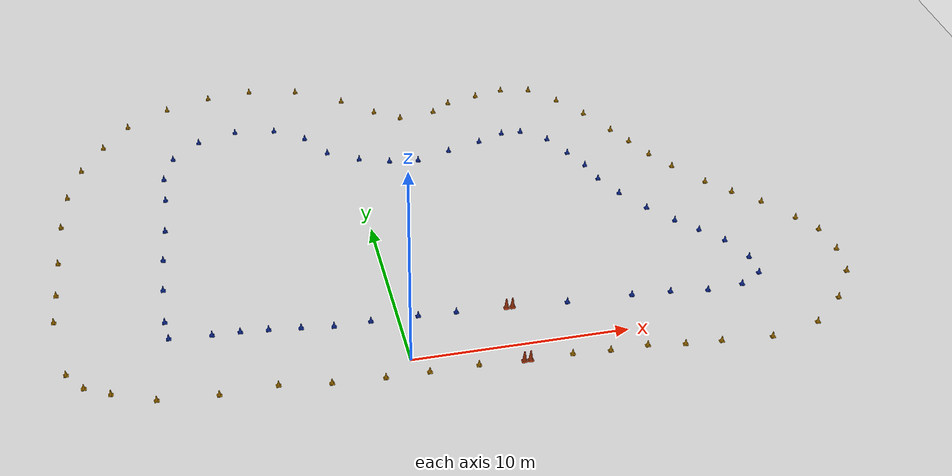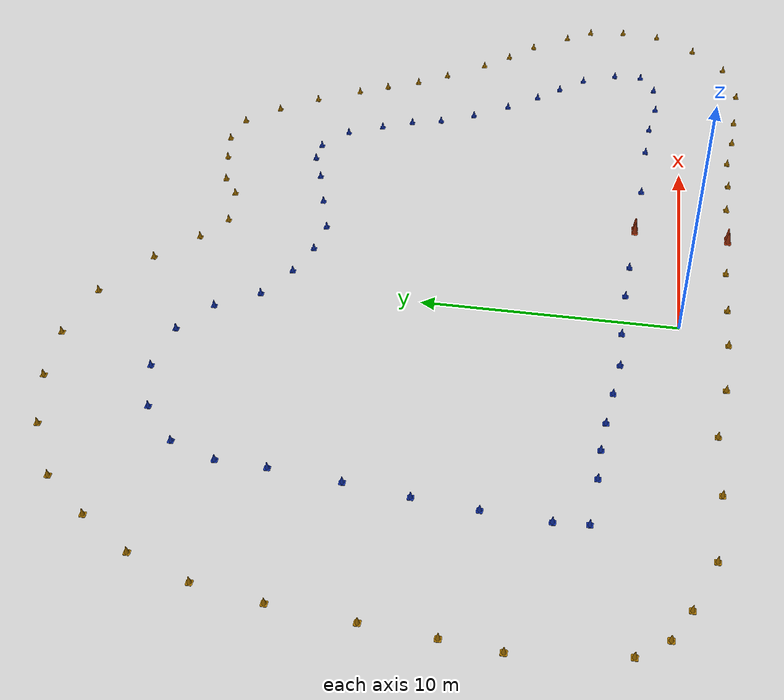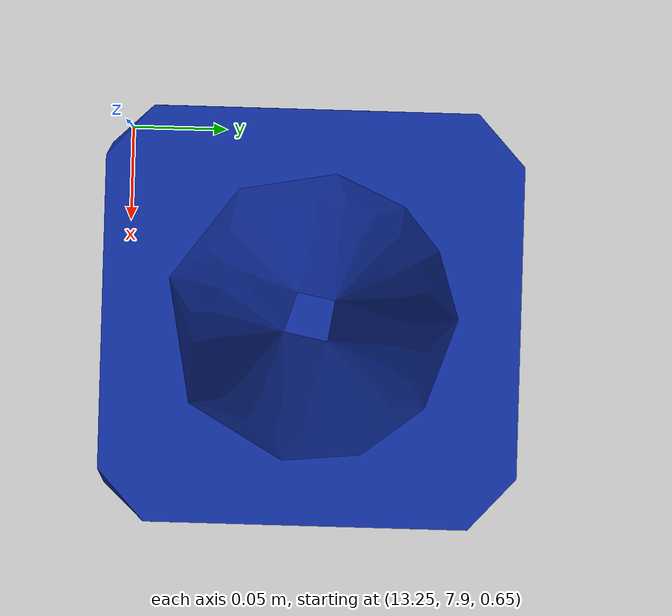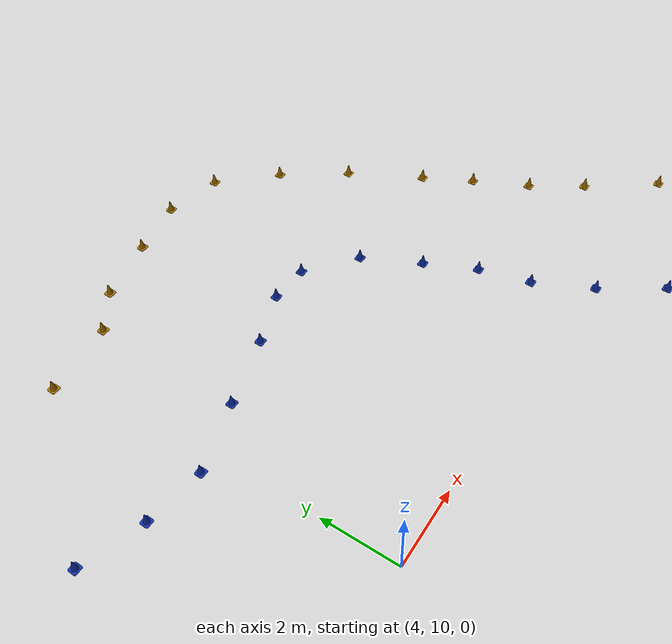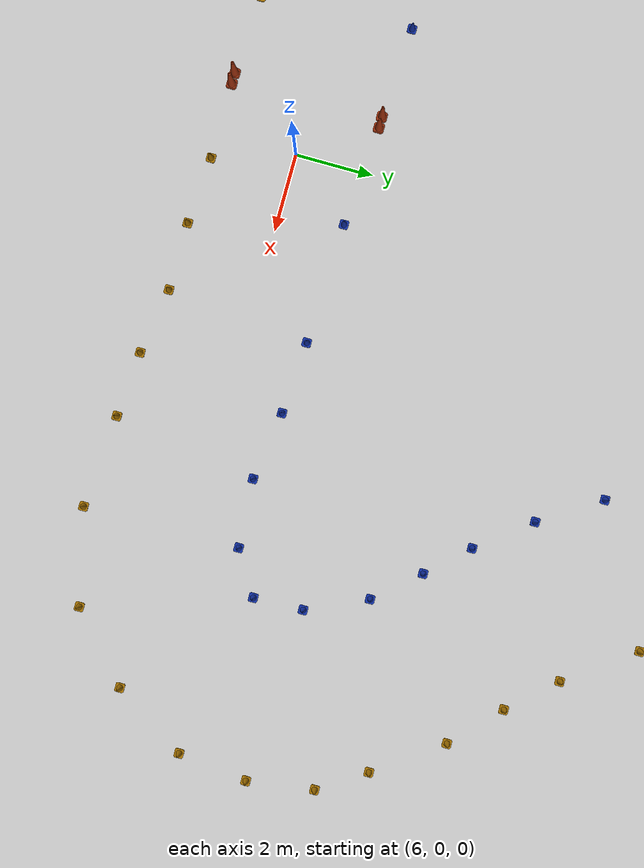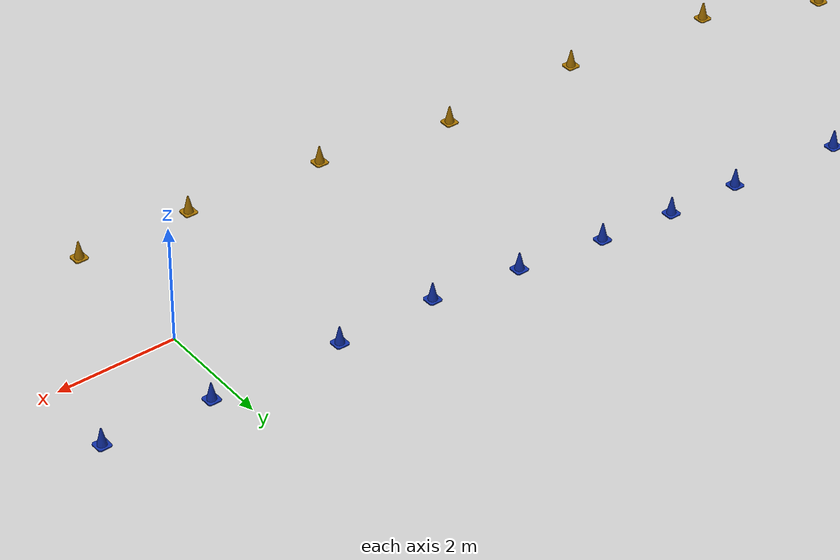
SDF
<sdf version='1.6'>
  <world name='boa_constrictor'>
    <gui fullscreen='0'>
      <camera name='user_camera'>
        <pose frame=''>-40 40 20 0 0.667643 -1</pose>
        <view_controller>orbit</view_controller>
        <projection_type>perspective</projection_type>
      </camera>
    </gui>

    <!-- WORLD SETTINGS -->
    <scene>
      <ambient>1.0 1.0 1.0 1.0</ambient>
      <shadows>false</shadows>
    </scene>

    <spherical_coordinates>
      <heading_deg>180</heading_deg>

      <!-- Appleton Tower coordinates -->
      <latitude_deg>-27.69056</latitude_deg>
      <longitude_deg>152.65461</longitude_deg>
    </spherical_coordinates>

    <light name='sun' type='directional'>
      <cast_shadows>1</cast_shadows>
      <pose frame=''>0 0 10 0 -0 0</pose>
      <diffuse>0.8 0.8 0.8 1</diffuse>
      <specular>0.1 0.1 0.1 1</specular>
      <attenuation>
        <range>1000</range>
        <constant>0.9</constant>
        <linear>0.01</linear>
        <quadratic>0.001</quadratic>
      </attenuation>
      <direction>-0.5 0.5 -1</direction>
    </light>

    <!-- MODELS -->
    <include>
      <uri>model://ground_plane</uri>
      <pose>0.0 0.0 0.0 0 0 0</pose>
    </include>

    <include>
      <uri>model://boa_constrictor</uri>
      <pose>0 0 0.5 0 0 0</pose>
    </include>

  </world>
</sdf>

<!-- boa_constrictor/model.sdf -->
<sdf version='1.6'>
  <model name='track'>

    <include>
      <pose>7.580770159723322 1.6721591436489165 0.15 0 0 0</pose>
      <uri>model://blue_cone</uri>
      <name>blue_cone_0</name>

      <covariance x="0.00019832" y="0.00019832" xy="0.0"/>

    </include>

    <include>
      <pose>10.600905184688116 1.552044188092509 0.15 0 0 0</pose>
      <uri>model://blue_cone</uri>
      <name>blue_cone_1</name>

      <covariance x="0.000196" y="0.000196" xy="0.0"/>

    </include>

    <include>
      <pose>12.406227504828944 1.4246719240060557 0.15 0 0 0</pose>
      <uri>model://blue_cone</uri>
      <name>blue_cone_2</name>

      <covariance x="0.000196" y="0.000196" xy="0.0"/>

    </include>

    <include>
      <pose>14.12181422599625 1.1678036734773327 0.15 0 0 0</pose>
      <uri>model://blue_cone</uri>
      <name>blue_cone_3</name>

      <covariance x="0.000196" y="0.000196" xy="0.0"/>

    </include>

    <include>
      <pose>15.811562903721692 1.272153738652002 0.15 0 0 0</pose>
      <uri>model://blue_cone</uri>
      <name>blue_cone_4</name>

      <covariance x="0.000196" y="0.000196" xy="0.0"/>

    </include>

    <include>
      <pose>16.872870803102003 1.925526649813425 0.15 0 0 0</pose>
      <uri>model://blue_cone</uri>
      <name>blue_cone_5</name>

      <covariance x="0.000196" y="0.000196" xy="0.0"/>

    </include>

    <include>
      <pose>16.84410174437881 3.1562898306224607 0.15 0 0 0</pose>
      <uri>model://blue_cone</uri>
      <name>blue_cone_6</name>

      <covariance x="0.000196" y="0.000196" xy="0.0"/>

    </include>

    <include>
      <pose>16.1753147048438 4.643067502019743 0.15 0 0 0</pose>
      <uri>model://blue_cone</uri>
      <name>blue_cone_7</name>

      <covariance x="0.000196" y="0.000196" xy="0.0"/>

    </include>

    <include>
      <pose>15.253521570782151 5.713880836070051 0.15 0 0 0</pose>
      <uri>model://blue_cone</uri>
      <name>blue_cone_8</name>

      <covariance x="0.000196" y="0.000196" xy="0.0"/>

    </include>

    <include>
      <pose>14.360082061058376 6.6953154904193655 0.15 0 0 0</pose>
      <uri>model://blue_cone</uri>
      <name>blue_cone_9</name>

      <covariance x="0.000196" y="0.000196" xy="0.0"/>

    </include>

    <include>
      <pose>13.350259800030283 7.99862709203576 0.15 0 0 0</pose>
      <uri>model://blue_cone</uri>
      <name>blue_cone_10</name>

      <covariance x="0.000196" y="0.000196" xy="0.0"/>

    </include>

    <include>
      <pose>12.400274867087386 9.487857471328557 0.15 0 0 0</pose>
      <uri>model://blue_cone</uri>
      <name>blue_cone_11</name>

      <covariance x="0.000196" y="0.000196" xy="0.0"/>

    </include>

    <include>
      <pose>11.734004153522308 10.931068331875077 0.15 0 0 0</pose>
      <uri>model://blue_cone</uri>
      <name>blue_cone_12</name>

      <covariance x="0.000196" y="0.000196" xy="0.0"/>

    </include>

    <include>
      <pose>11.418320042414749 12.22160222912822 0.15 0 0 0</pose>
      <uri>model://blue_cone</uri>
      <name>blue_cone_13</name>

      <covariance x="0.000196" y="0.000196" xy="0.0"/>

    </include>

    <include>
      <pose>10.849123909628489 13.503965806118956 0.15 0 0 0</pose>
      <uri>model://blue_cone</uri>
      <name>blue_cone_14</name>

      <covariance x="0.000196" y="0.000196" xy="0.0"/>

    </include>

    <include>
      <pose>10.164900173643302 14.943966189726934 0.15 0 0 0</pose>
      <uri>model://blue_cone</uri>
      <name>blue_cone_15</name>

      <covariance x="0.000196" y="0.000196" xy="0.0"/>

    </include>

    <include>
      <pose>8.980711371638566 15.924300390604351 0.15 0 0 0</pose>
      <uri>model://blue_cone</uri>
      <name>blue_cone_16</name>

      <covariance x="0.000196" y="0.000196" xy="0.0"/>

    </include>

    <include>
      <pose>7.979747108270373 15.965800191417792 0.15 0 0 0</pose>
      <uri>model://blue_cone</uri>
      <name>blue_cone_17</name>

      <covariance x="0.000196" y="0.000196" xy="0.0"/>

    </include>

    <include>
      <pose>6.672560416880449 15.467069613905172 0.15 0 0 0</pose>
      <uri>model://blue_cone</uri>
      <name>blue_cone_18</name>

      <covariance x="0.000196" y="0.000196" xy="0.0"/>

    </include>

    <include>
      <pose>4.950269621172732 14.955210057239832 0.15 0 0 0</pose>
      <uri>model://blue_cone</uri>
      <name>blue_cone_19</name>

      <covariance x="0.0001997083333333" y="0.0001997083333333" xy="0.0"/>

    </include>

    <include>
      <pose>3.2524555660788224 14.437422477388122 0.15 0 0 0</pose>
      <uri>model://blue_cone</uri>
      <name>blue_cone_20</name>

      <covariance x="0.000196" y="0.000196" xy="0.0"/>

    </include>

    <include>
      <pose>1.810768848230376 14.642260578886797 0.15 0 0 0</pose>
      <uri>model://blue_cone</uri>
      <name>blue_cone_21</name>

      <covariance x="0.000196" y="0.000196" xy="0.0"/>

    </include>

    <include>
      <pose>0.3354982167720459 15.150824604200174 0.15 0 0 0</pose>
      <uri>model://blue_cone</uri>
      <name>blue_cone_22</name>

      <covariance x="0.000196" y="0.000196" xy="0.0"/>

    </include>

    <include>
      <pose>-1.1647364491853829 16.05360449631908 0.15 0 0 0</pose>
      <uri>model://blue_cone</uri>
      <name>blue_cone_23</name>

      <covariance x="0.000196" y="0.000196" xy="0.0"/>

    </include>

    <include>
      <pose>-2.1017899809058846 17.630250925485406 0.15 0 0 0</pose>
      <uri>model://blue_cone</uri>
      <name>blue_cone_24</name>

      <covariance x="0.000196" y="0.000196" xy="0.0"/>

    </include>

    <include>
      <pose>-3.5559685936436294 18.67715139022377 0.15 0 0 0</pose>
      <uri>model://blue_cone</uri>
      <name>blue_cone_25</name>

      <covariance x="0.000196" y="0.000196" xy="0.0"/>

    </include>

    <include>
      <pose>-5.564924128589277 18.96597018587267 0.15 0 0 0</pose>
      <uri>model://blue_cone</uri>
      <name>blue_cone_26</name>

      <covariance x="0.000196" y="0.000196" xy="0.0"/>

    </include>

    <include>
      <pose>-7.506309783857348 18.404528445863107 0.15 0 0 0</pose>
      <uri>model://blue_cone</uri>
      <name>blue_cone_27</name>

      <covariance x="0.000196" y="0.000196" xy="0.0"/>

    </include>

    <include>
      <pose>-8.928494833243114 17.120259154454885 0.15 0 0 0</pose>
      <uri>model://blue_cone</uri>
      <name>blue_cone_28</name>

      <covariance x="0.000196" y="0.000196" xy="0.0"/>

    </include>

    <include>
      <pose>-9.528195809206576 15.407833808620865 0.15 0 0 0</pose>
      <uri>model://blue_cone</uri>
      <name>blue_cone_29</name>

      <covariance x="0.000196" y="0.000196" xy="0.0"/>

    </include>

    <include>
      <pose>-9.603797030691862 13.580601428679596 0.15 0 0 0</pose>
      <uri>model://blue_cone</uri>
      <name>blue_cone_30</name>

      <covariance x="0.000196" y="0.000196" xy="0.0"/>

    </include>

    <include>
      <pose>-9.833092119605103 11.000227997877854 0.15 0 0 0</pose>
      <uri>model://blue_cone</uri>
      <name>blue_cone_31</name>

      <covariance x="0.000196" y="0.000196" xy="0.0"/>

    </include>

    <include>
      <pose>-10.113960453709206 8.677890357225415 0.15 0 0 0</pose>
      <uri>model://blue_cone</uri>
      <name>blue_cone_32</name>

      <covariance x="0.000196" y="0.000196" xy="0.0"/>

    </include>

    <include>
      <pose>-10.300299641302953 6.4043732531112765 0.15 0 0 0</pose>
      <uri>model://blue_cone</uri>
      <name>blue_cone_33</name>

      <covariance x="0.000196" y="0.000196" xy="0.0"/>

    </include>

    <include>
      <pose>-10.426781141389675 4.057466228860182 0.15 0 0 0</pose>
      <uri>model://blue_cone</uri>
      <name>blue_cone_34</name>

      <covariance x="0.000196" y="0.000196" xy="0.0"/>

    </include>

    <include>
      <pose>-10.3490473565182 2.877284444995476 0.15 0 0 0</pose>
      <uri>model://blue_cone</uri>
      <name>blue_cone_35</name>

      <covariance x="0.000196" y="0.000196" xy="0.0"/>

    </include>

    <include>
      <pose>-8.445408241015182 2.7214863215755085 0.15 0 0 0</pose>
      <uri>model://blue_cone</uri>
      <name>blue_cone_36</name>

      <covariance x="0.000196" y="0.000196" xy="0.0"/>

    </include>

    <include>
      <pose>-7.195248648650308 2.682269976438299 0.15 0 0 0</pose>
      <uri>model://blue_cone</uri>
      <name>blue_cone_37</name>

      <covariance x="0.000196" y="0.000196" xy="0.0"/>

    </include>

    <include>
      <pose>-5.945027489724362 2.565359125611607 0.15 0 0 0</pose>
      <uri>model://blue_cone</uri>
      <name>blue_cone_38</name>

      <covariance x="0.000196" y="0.000196" xy="0.0"/>

    </include>

    <include>
      <pose>-4.509214818965177 2.380480231919104 0.15 0 0 0</pose>
      <uri>model://blue_cone</uri>
      <name>blue_cone_39</name>

      <covariance x="0.000196" y="0.000196" xy="0.0"/>

    </include>

    <include>
      <pose>-3.0570419056183367 2.187397022123592 0.15 0 0 0</pose>
      <uri>model://blue_cone</uri>
      <name>blue_cone_40</name>

      <covariance x="0.000196" y="0.000196" xy="0.0"/>

    </include>

    <include>
      <pose>-1.3924839109476093 2.190402523796651 0.15 0 0 0</pose>
      <uri>model://blue_cone</uri>
      <name>blue_cone_41</name>

      <covariance x="0.000196" y="0.000196" xy="0.0"/>

    </include>

    <include>
      <pose>0.7552580961993363 2.123033050353788 0.15 0 0 0</pose>
      <uri>model://blue_cone</uri>
      <name>blue_cone_42</name>

      <covariance x="0.000196" y="0.000196" xy="0.0"/>

    </include>

    <include>
      <pose>2.487898066383735 2.0241715780093785 0.15 0 0 0</pose>
      <uri>model://blue_cone</uri>
      <name>blue_cone_43</name>

      <covariance x="0.0002027692307692" y="0.0002027692307692" xy="0.0"/>

    </include>

    <include>
      <pose>6.843598889005221 -1.8824939803173533 0.15 0 0 0</pose>
      <uri>model://yellow_cone</uri>
      <name>yellow_cone_44</name>

      <covariance x="0.0002027692307692" y="0.0002027692307692" xy="0.0"/>

    </include>

    <include>
      <pose>8.533943487953845 -2.005628793587926 0.15 0 0 0</pose>
      <uri>model://yellow_cone</uri>
      <name>yellow_cone_45</name>

      <covariance x="0.0002027692307692" y="0.0002027692307692" xy="0.0"/>

    </include>

    <include>
      <pose>10.22791356468838 -2.0116493916499314 0.15 0 0 0</pose>
      <uri>model://yellow_cone</uri>
      <name>yellow_cone_46</name>

      <covariance x="0.0002027692307692" y="0.0002027692307692" xy="0.0"/>

    </include>

    <include>
      <pose>11.882180882767669 -2.2772619961221503 0.15 0 0 0</pose>
      <uri>model://yellow_cone</uri>
      <name>yellow_cone_47</name>

      <covariance x="0.0002027692307692" y="0.0002027692307692" xy="0.0"/>

    </include>

    <include>
      <pose>13.51524801399529 -2.4089238458239954 0.15 0 0 0</pose>
      <uri>model://yellow_cone</uri>
      <name>yellow_cone_48</name>

      <covariance x="0.0002027692307692" y="0.0002027692307692" xy="0.0"/>

    </include>

    <include>
      <pose>15.824591828972618 -2.598366724383875 0.15 0 0 0</pose>
      <uri>model://yellow_cone</uri>
      <name>yellow_cone_49</name>

      <covariance x="0.0002027692307692" y="0.0002027692307692" xy="0.0"/>

    </include>

    <include>
      <pose>18.170340585141183 -2.049460298457226 0.15 0 0 0</pose>
      <uri>model://yellow_cone</uri>
      <name>yellow_cone_50</name>

      <covariance x="0.0002027692307692" y="0.0002027692307692" xy="0.0"/>

    </include>

    <include>
      <pose>19.77510984175472 -0.5938185181835465 0.15 0 0 0</pose>
      <uri>model://yellow_cone</uri>
      <name>yellow_cone_51</name>

      <covariance x="0.0002027692307692" y="0.0002027692307692" xy="0.0"/>

    </include>

    <include>
      <pose>20.908071514987803 1.1891582206267817 0.15 0 0 0</pose>
      <uri>model://yellow_cone</uri>
      <name>yellow_cone_52</name>

      <covariance x="0.0002027692307692" y="0.0002027692307692" xy="0.0"/>

    </include>

    <include>
      <pose>21.11731062908797 2.9001829742183176 0.15 0 0 0</pose>
      <uri>model://yellow_cone</uri>
      <name>yellow_cone_53</name>

      <covariance x="0.0002027692307692" y="0.0002027692307692" xy="0.0"/>

    </include>

    <include>
      <pose>20.895812241717078 4.538752391001086 0.15 0 0 0</pose>
      <uri>model://yellow_cone</uri>
      <name>yellow_cone_54</name>

      <covariance x="0.0002027692307692" y="0.0002027692307692" xy="0.0"/>

    </include>

    <include>
      <pose>20.15901965109665 5.683237094998034 0.15 0 0 0</pose>
      <uri>model://yellow_cone</uri>
      <name>yellow_cone_55</name>

      <covariance x="0.0002027692307692" y="0.0002027692307692" xy="0.0"/>

    </include>

    <include>
      <pose>19.01632975888174 7.304280822882692 0.15 0 0 0</pose>
      <uri>model://yellow_cone</uri>
      <name>yellow_cone_56</name>

      <covariance x="0.0002027692307692" y="0.0002027692307692" xy="0.0"/>

    </include>

    <include>
      <pose>17.88461204168759 8.411174170118855 0.15 0 0 0</pose>
      <uri>model://yellow_cone</uri>
      <name>yellow_cone_57</name>

      <covariance x="0.0002027692307692" y="0.0002027692307692" xy="0.0"/>

    </include>

    <include>
      <pose>16.885672770833168 9.535694751294631 0.15 0 0 0</pose>
      <uri>model://yellow_cone</uri>
      <name>yellow_cone_58</name>

      <covariance x="0.0002027692307692" y="0.0002027692307692" xy="0.0"/>

    </include>

    <include>
      <pose>15.695089397792623 11.204913754771114 0.15 0 0 0</pose>
      <uri>model://yellow_cone</uri>
      <name>yellow_cone_59</name>

      <covariance x="0.0002027692307692" y="0.0002027692307692" xy="0.0"/>

    </include>

    <include>
      <pose>14.898561506389992 12.49885297299616 0.15 0 0 0</pose>
      <uri>model://yellow_cone</uri>
      <name>yellow_cone_60</name>

      <covariance x="0.0002027692307692" y="0.0002027692307692" xy="0.0"/>

    </include>

    <include>
      <pose>14.252657014273804 13.88213053732625 0.15 0 0 0</pose>
      <uri>model://yellow_cone</uri>
      <name>yellow_cone_61</name>

      <covariance x="0.0002027692307692" y="0.0002027692307692" xy="0.0"/>

    </include>

    <include>
      <pose>13.632126148079042 15.118679152956146 0.15 0 0 0</pose>
      <uri>model://yellow_cone</uri>
      <name>yellow_cone_62</name>

      <covariance x="0.0002027692307692" y="0.0002027692307692" xy="0.0"/>

    </include>

    <include>
      <pose>12.689784460471689 16.941899311717716 0.15 0 0 0</pose>
      <uri>model://yellow_cone</uri>
      <name>yellow_cone_63</name>

      <covariance x="0.0002027692307692" y="0.0002027692307692" xy="0.0"/>

    </include>

    <include>
      <pose>11.622214176234108 18.51509588507084 0.15 0 0 0</pose>
      <uri>model://yellow_cone</uri>
      <name>yellow_cone_64</name>

      <covariance x="0.0002027692307692" y="0.0002027692307692" xy="0.0"/>

    </include>

    <include>
      <pose>10.410094566193266 19.842930000431632 0.15 0 0 0</pose>
      <uri>model://yellow_cone</uri>
      <name>yellow_cone_65</name>

      <covariance x="0.0002027692307692" y="0.0002027692307692" xy="0.0"/>

    </include>

    <include>
      <pose>8.945934040908583 20.14804871043043 0.15 0 0 0</pose>
      <uri>model://yellow_cone</uri>
      <name>yellow_cone_66</name>

      <covariance x="0.0002027692307692" y="0.0002027692307692" xy="0.0"/>

    </include>

    <include>
      <pose>7.486028873701576 19.85503408899872 0.15 0 0 0</pose>
      <uri>model://yellow_cone</uri>
      <name>yellow_cone_67</name>

      <covariance x="0.0002027692307692" y="0.0002027692307692" xy="0.0"/>

    </include>

    <include>
      <pose>5.893838640547032 19.4729907680684 0.15 0 0 0</pose>
      <uri>model://yellow_cone</uri>
      <name>yellow_cone_68</name>

      <covariance x="0.0002027692307692" y="0.0002027692307692" xy="0.0"/>

    </include>

    <include>
      <pose>4.94453647279415 18.79914291540236 0.15 0 0 0</pose>
      <uri>model://yellow_cone</uri>
      <name>yellow_cone_69</name>

      <covariance x="0.0002027692307692" y="0.0002027692307692" xy="0.0"/>

    </include>

    <include>
      <pose>3.11858290007736 18.56255473791404 0.15 0 0 0</pose>
      <uri>model://yellow_cone</uri>
      <name>yellow_cone_70</name>

      <covariance x="0.0002027692307692" y="0.0002027692307692" xy="0.0"/>

    </include>

    <include>
      <pose>1.8715940456249849 19.40800767407754 0.15 0 0 0</pose>
      <uri>model://yellow_cone</uri>
      <name>yellow_cone_71</name>

      <covariance x="0.0002027692307692" y="0.0002027692307692" xy="0.0"/>

    </include>

    <include>
      <pose>0.3464643429092433 20.847964900015025 0.15 0 0 0</pose>
      <uri>model://yellow_cone</uri>
      <name>yellow_cone_72</name>

      <covariance x="0.0002027692307692" y="0.0002027692307692" xy="0.0"/>

    </include>

    <include>
      <pose>-1.9297155726266289 22.308455101306908 0.15 0 0 0</pose>
      <uri>model://yellow_cone</uri>
      <name>yellow_cone_73</name>

      <covariance x="0.0002027692307692" y="0.0002027692307692" xy="0.0"/>

    </include>

    <include>
      <pose>-4.365418611916313 22.82167195967721 0.15 0 0 0</pose>
      <uri>model://yellow_cone</uri>
      <name>yellow_cone_74</name>

      <covariance x="0.0002027692307692" y="0.0002027692307692" xy="0.0"/>

    </include>

    <include>
      <pose>-6.589780217024341 22.612822760974176 0.15 0 0 0</pose>
      <uri>model://yellow_cone</uri>
      <name>yellow_cone_75</name>

      <covariance x="0.0002027692307692" y="0.0002027692307692" xy="0.0"/>

    </include>

    <include>
      <pose>-8.837380631252021 21.91014623037398 0.15 0 0 0</pose>
      <uri>model://yellow_cone</uri>
      <name>yellow_cone_76</name>

      <covariance x="0.0002027692307692" y="0.0002027692307692" xy="0.0"/>

    </include>

    <include>
      <pose>-10.981353094845144 20.65220611142601 0.15 0 0 0</pose>
      <uri>model://yellow_cone</uri>
      <name>yellow_cone_77</name>

      <covariance x="0.0002027692307692" y="0.0002027692307692" xy="0.0"/>

    </include>

    <include>
      <pose>-12.345882462048602 18.92038569106543 0.15 0 0 0</pose>
      <uri>model://yellow_cone</uri>
      <name>yellow_cone_78</name>

      <covariance x="0.0002027692307692" y="0.0002027692307692" xy="0.0"/>

    </include>

    <include>
      <pose>-13.54301933614279 17.01769163394512 0.15 0 0 0</pose>
      <uri>model://yellow_cone</uri>
      <name>yellow_cone_79</name>

      <covariance x="0.0002027692307692" y="0.0002027692307692" xy="0.0"/>

    </include>

    <include>
      <pose>-14.320683927432 14.77225541252754 0.15 0 0 0</pose>
      <uri>model://yellow_cone</uri>
      <name>yellow_cone_80</name>

      <covariance x="0.0002027692307692" y="0.0002027692307692" xy="0.0"/>

    </include>

    <include>
      <pose>-14.70681314200853 12.338855075796593 0.15 0 0 0</pose>
      <uri>model://yellow_cone</uri>
      <name>yellow_cone_81</name>

      <covariance x="0.0002027692307692" y="0.0002027692307692" xy="0.0"/>

    </include>

    <include>
      <pose>-14.943345897469989 9.454277531079226 0.15 0 0 0</pose>
      <uri>model://yellow_cone</uri>
      <name>yellow_cone_82</name>

      <covariance x="0.0002027692307692" y="0.0002027692307692" xy="0.0"/>

    </include>

    <include>
      <pose>-15.11296111704748 7.028100180975679 0.15 0 0 0</pose>
      <uri>model://yellow_cone</uri>
      <name>yellow_cone_83</name>

      <covariance x="0.0002027692307692" y="0.0002027692307692" xy="0.0"/>

    </include>

    <include>
      <pose>-15.280412827223138 5.085823064143965 0.15 0 0 0</pose>
      <uri>model://yellow_cone</uri>
      <name>yellow_cone_84</name>

      <covariance x="0.0002027692307692" y="0.0002027692307692" xy="0.0"/>

    </include>

    <include>
      <pose>-14.87386766558793 1.3510011528992123 0.15 0 0 0</pose>
      <uri>model://yellow_cone</uri>
      <name>yellow_cone_85</name>

      <covariance x="0.0002027692307692" y="0.0002027692307692" xy="0.0"/>

    </include>

    <include>
      <pose>-14.16295988814234 0.3127558597209212 0.15 0 0 0</pose>
      <uri>model://yellow_cone</uri>
      <name>yellow_cone_86</name>

      <covariance x="0.0002027692307692" y="0.0002027692307692" xy="0.0"/>

    </include>

    <include>
      <pose>-13.054809394469384 -0.3114974548774443 0.15 0 0 0</pose>
      <uri>model://yellow_cone</uri>
      <name>yellow_cone_87</name>

      <covariance x="0.0002027692307692" y="0.0002027692307692" xy="0.0"/>

    </include>

    <include>
      <pose>-11.179139510460931 -1.0933267290997009 0.15 0 0 0</pose>
      <uri>model://yellow_cone</uri>
      <name>yellow_cone_88</name>

      <covariance x="0.0002027692307692" y="0.0002027692307692" xy="0.0"/>

    </include>

    <include>
      <pose>-8.547895432104973 -1.3148659681044763 0.15 0 0 0</pose>
      <uri>model://yellow_cone</uri>
      <name>yellow_cone_89</name>

      <covariance x="0.0002027692307692" y="0.0002027692307692" xy="0.0"/>

    </include>

    <include>
      <pose>-6.011721787165715 -1.22984628286057 0.15 0 0 0</pose>
      <uri>model://yellow_cone</uri>
      <name>yellow_cone_90</name>

      <covariance x="0.0002027692307692" y="0.0002027692307692" xy="0.0"/>

    </include>

    <include>
      <pose>-3.754514280215085 -1.5768054555327284 0.15 0 0 0</pose>
      <uri>model://yellow_cone</uri>
      <name>yellow_cone_91</name>

      <covariance x="0.0002027692307692" y="0.0002027692307692" xy="0.0"/>

    </include>

    <include>
      <pose>-1.4291978134923788 -1.7168434346877794 0.15 0 0 0</pose>
      <uri>model://yellow_cone</uri>
      <name>yellow_cone_92</name>

      <covariance x="0.0002027692307692" y="0.0002027692307692" xy="0.0"/>

    </include>

    <include>
      <pose>0.489366163499642 -1.743962423833274 0.15 0 0 0</pose>
      <uri>model://yellow_cone</uri>
      <name>yellow_cone_93</name>

      <covariance x="0.0002027692307692" y="0.0002027692307692" xy="0.0"/>

    </include>

    <include>
      <pose>2.671266329898141 -1.7444082675854609 0.15 0 0 0</pose>
      <uri>model://yellow_cone</uri>
      <name>yellow_cone_94</name>

      <covariance x="0.0002027692307692" y="0.0002027692307692" xy="0.0"/>

    </include>

    <include>
      <pose>5.063386910976291 1.8746396911220533 0.15 0 0 0</pose>
      <uri>model://big_cone</uri>
      <name>big_cone_95</name>

      <covariance x="0.0002027692307692" y="0.0002027692307692" xy="0.0"/>

    </include>

    <include>
      <pose>4.779602459550926 1.8751677854026436 0.15 0 0 0</pose>
      <uri>model://big_cone</uri>
      <name>big_cone_96</name>

      <covariance x="0.0002027692307692" y="0.0002027692307692" xy="0.0"/>

    </include>

    <include>
      <pose>4.9454284982198375 -1.8755282802213809 0.15 0 0 0</pose>
      <uri>model://big_cone</uri>
      <name>big_cone_97</name>

      <covariance x="0.0002027692307692" y="0.0002027692307692" xy="0.0"/>

    </include>

    <include>
      <pose>4.666369198533721 -1.8742791971171728 0.15 0 0 0</pose>
      <uri>model://big_cone</uri>
      <name>big_cone_98</name>

      <covariance x="0.0002027692307692" y="0.0002027692307692" xy="0.0"/>

    </include>

    <static>0</static>
    <allow_auto_disable>1</allow_auto_disable>
  </model>
</sdf>

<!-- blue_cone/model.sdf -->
<sdf version='1.6'>
  <model name='blue_cone'>
    <link name='link'>
      <pose frame=''>0 0 0 0 0 0</pose>
      <inertial>
        <inertia>
          <ixx>0.0016</ixx>
          <ixy>0</ixy>
          <ixz>0</ixz>
          <iyy>0.0016</iyy>
          <iyz>0</iyz>
          <izz>0.0010</izz>
        </inertia>
        <mass>0.45</mass>
      </inertial>
      <visual name='visual'>
        <geometry>
          <mesh>
            <uri>model://cone_blue.dae</uri>
          </mesh>
        </geometry>
        <cast_shadows>1</cast_shadows>
      </visual>
      <collision name='collision'>
        <max_contacts>3</max_contacts>
        <geometry>
          <mesh>
            <uri>model://cone_blue.dae</uri>
          </mesh>
        </geometry>
      </collision>
    </link>
  </model>
</sdf>

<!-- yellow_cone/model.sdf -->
<sdf version='1.6'>
  <model name='yellow_cone'>
    <link name='link'>
      <pose frame=''>0 0 0 0 0 0</pose>
      <inertial>
        <inertia>
          <ixx>0.0016</ixx>
          <ixy>0</ixy>
          <ixz>0</ixz>
          <iyy>0.0016</iyy>
          <iyz>0</iyz>
          <izz>0.0010</izz>
        </inertia>
        <mass>0.45</mass>
      </inertial>
      <visual name='visual'>
        <geometry>
          <mesh>
            <uri>model://cone_yellow.dae</uri>
          </mesh>
        </geometry>
        <cast_shadows>1</cast_shadows>
      </visual>
      <collision name='collision'>
        <max_contacts>3</max_contacts>
        <geometry>
          <mesh>
            <uri>model://cone_yellow.dae</uri>
          </mesh>
        </geometry>
      </collision>
    </link>
  </model>
</sdf>

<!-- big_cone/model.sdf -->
<sdf version='1.6'>
  <model name='big_cone'>
    <link name='link'>
      <pose frame=''>0 0 0 0 0 0</pose>
      <inertial>
        <inertia>
          <ixx>0.0016</ixx>
          <ixy>0</ixy>
          <ixz>0</ixz>
          <iyy>0.0016</iyy>
          <iyz>0</iyz>
          <izz>0.0010</izz>
        </inertia>
        <mass>0.45</mass>
      </inertial>
      <visual name='visual'>
        <geometry>
          <mesh>
            <uri>model://cone_big.dae</uri>
          </mesh>
        </geometry>
        <cast_shadows>1</cast_shadows>
      </visual>
      <collision name='collision'>
        <max_contacts>3</max_contacts>
        <geometry>
          <mesh>
            <uri>model://cone_big.dae</uri>
          </mesh>
        </geometry>
      </collision>
    </link>
  </model>
</sdf>
